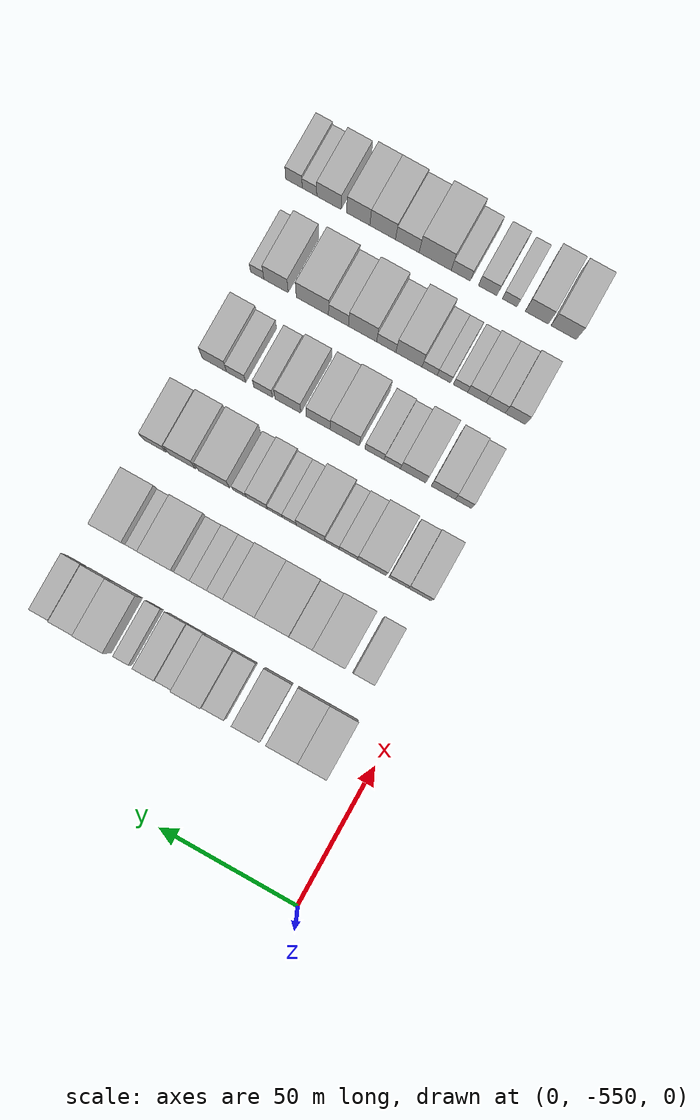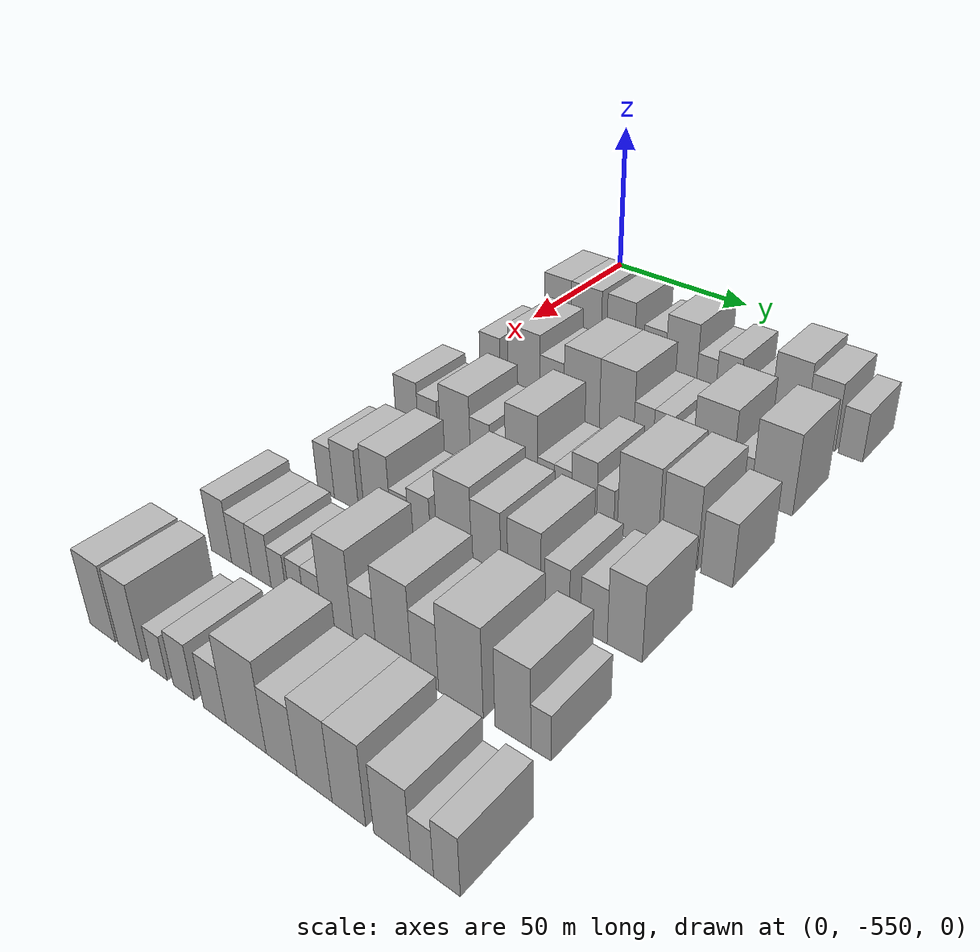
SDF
<sdf version="1.6">
 <world name="default">
  <model name="building_1">
   <static>1</static>
   <pose>50.0000 -532.9642 0 0.000000 0.000000 0.000000</pose>
   <link name="link">
    <pose>0 0 12.00 0 0 0</pose>
    <collision name="collision"><geometry><box><size>20.0000 10.0716 24.0000</size></box></geometry></collision>
    <visual name="visual">
     <cast_shadows>0</cast_shadows>
     <geometry><box><size>20.0000 10.0716 24.0000</size></box></geometry>
     <material>
      <script>
       <uri>model://HANNAS_wall/materials/scripts</uri>
       <uri>model://HANNAS_wall/materials/textures</uri>
       <name>vrc/HANNAS_wall</name>
      </script>
     </material>
    </visual>
   </link>
  </model>
  <model name="building_2">
   <static>1</static>
   <pose>50.0000 -522.3553 0 0.000000 0.000000 0.000000</pose>
   <link name="link">
    <pose>0 0 12.00 0 0 0</pose>
    <collision name="collision"><geometry><box><size>20.0000 11.1462 24.0000</size></box></geometry></collision>
    <visual name="visual">
     <cast_shadows>0</cast_shadows>
     <geometry><box><size>20.0000 11.1462 24.0000</size></box></geometry>
     <material>
      <script>
       <uri>model://HANNAS_wall/materials/scripts</uri>
       <uri>model://HANNAS_wall/materials/textures</uri>
       <name>vrc/HANNAS_wall</name>
      </script>
     </material>
    </visual>
   </link>
  </model>
  <model name="building_3">
   <static>1</static>
   <pose>50.0000 -509.8019 0 0.000000 0.000000 0.000000</pose>
   <link name="link">
    <pose>0 0 12.00 0 0 0</pose>
    <collision name="collision"><geometry><box><size>20.0000 9.9606 24.0000</size></box></geometry></collision>
    <visual name="visual">
     <cast_shadows>0</cast_shadows>
     <geometry><box><size>20.0000 9.9606 24.0000</size></box></geometry>
     <material>
      <script>
       <uri>model://HANNAS_wall/materials/scripts</uri>
       <uri>model://HANNAS_wall/materials/textures</uri>
       <name>vrc/HANNAS_wall</name>
      </script>
     </material>
    </visual>
   </link>
  </model>
  <model name="building_4">
   <static>1</static>
   <pose>50.0000 -497.9303 0 0.000000 0.000000 0.000000</pose>
   <link name="link">
    <pose>0 0 9.00 0 0 0</pose>
    <collision name="collision"><geometry><box><size>20.0000 7.7826 18.0000</size></box></geometry></collision>
    <visual name="visual">
     <cast_shadows>0</cast_shadows>
     <geometry><box><size>20.0000 7.7826 18.0000</size></box></geometry>
     <material>
      <script>
       <uri>model://HANNAS_wall/materials/scripts</uri>
       <uri>model://HANNAS_wall/materials/textures</uri>
       <name>vrc/HANNAS_wall</name>
      </script>
     </material>
    </visual>
   </link>
  </model>
  <model name="building_5">
   <static>1</static>
   <pose>50.0000 -488.7809 0 0.000000 0.000000 0.000000</pose>
   <link name="link">
    <pose>0 0 12.00 0 0 0</pose>
    <collision name="collision"><geometry><box><size>20.0000 10.5162 24.0000</size></box></geometry></collision>
    <visual name="visual">
     <cast_shadows>0</cast_shadows>
     <geometry><box><size>20.0000 10.5162 24.0000</size></box></geometry>
     <material>
      <script>
       <uri>model://HANNAS_wall/materials/scripts</uri>
       <uri>model://HANNAS_wall/materials/textures</uri>
       <name>vrc/HANNAS_wall</name>
      </script>
     </material>
    </visual>
   </link>
  </model>
  <model name="building_6">
   <static>1</static>
   <pose>50.0000 -480.3390 0 0.000000 0.000000 0.000000</pose>
   <link name="link">
    <pose>0 0 7.50 0 0 0</pose>
    <collision name="collision"><geometry><box><size>20.0000 6.3675 15.0000</size></box></geometry></collision>
    <visual name="visual">
     <cast_shadows>0</cast_shadows>
     <geometry><box><size>20.0000 6.3675 15.0000</size></box></geometry>
     <material>
      <script>
       <uri>model://HANNAS_wall/materials/scripts</uri>
       <uri>model://HANNAS_wall/materials/textures</uri>
       <name>vrc/HANNAS_wall</name>
      </script>
     </material>
    </visual>
   </link>
  </model>
  <model name="building_7">
   <static>1</static>
   <pose>50.0000 -473.3430 0 0.000000 0.000000 0.000000</pose>
   <link name="link">
    <pose>0 0 9.00 0 0 0</pose>
    <collision name="collision"><geometry><box><size>20.0000 7.6245 18.0000</size></box></geometry></collision>
    <visual name="visual">
     <cast_shadows>0</cast_shadows>
     <geometry><box><size>20.0000 7.6245 18.0000</size></box></geometry>
     <material>
      <script>
       <uri>model://HANNAS_wall/materials/scripts</uri>
       <uri>model://HANNAS_wall/materials/textures</uri>
       <name>vrc/HANNAS_wall</name>
      </script>
     </material>
    </visual>
   </link>
  </model>
  <model name="building_8">
   <static>1</static>
   <pose>50.0000 -464.7182 0 0.000000 0.000000 0.000000</pose>
   <link name="link">
    <pose>0 0 6.00 0 0 0</pose>
    <collision name="collision"><geometry><box><size>20.0000 5.6252 12.0000</size></box></geometry></collision>
    <visual name="visual">
     <cast_shadows>0</cast_shadows>
     <geometry><box><size>20.0000 5.6252 12.0000</size></box></geometry>
     <material>
      <script>
       <uri>model://HANNAS_wall/materials/scripts</uri>
       <uri>model://HANNAS_wall/materials/textures</uri>
       <name>vrc/HANNAS_wall</name>
      </script>
     </material>
    </visual>
   </link>
  </model>
  <model name="building_9">
   <static>1</static>
   <pose>50.0000 -454.5455 0 0.000000 0.000000 0.000000</pose>
   <link name="link">
    <pose>0 0 12.00 0 0 0</pose>
    <collision name="collision"><geometry><box><size>20.0000 10.7202 24.0000</size></box></geometry></collision>
    <visual name="visual">
     <cast_shadows>0</cast_shadows>
     <geometry><box><size>20.0000 10.7202 24.0000</size></box></geometry>
     <material>
      <script>
       <uri>model://HANNAS_wall/materials/scripts</uri>
       <uri>model://HANNAS_wall/materials/textures</uri>
       <name>vrc/HANNAS_wall</name>
      </script>
     </material>
    </visual>
   </link>
  </model>
  <model name="building_10">
   <static>1</static>
   <pose>50.0000 -444.7229 0 0.000000 0.000000 0.000000</pose>
   <link name="link">
    <pose>0 0 10.50 0 0 0</pose>
    <collision name="collision"><geometry><box><size>20.0000 8.9249 21.0000</size></box></geometry></collision>
    <visual name="visual">
     <cast_shadows>0</cast_shadows>
     <geometry><box><size>20.0000 8.9249 21.0000</size></box></geometry>
     <material>
      <script>
       <uri>model://HANNAS_wall/materials/scripts</uri>
       <uri>model://HANNAS_wall/materials/textures</uri>
       <name>vrc/HANNAS_wall</name>
      </script>
     </material>
    </visual>
   </link>
  </model>
  <model name="building_11">
   <static>1</static>
   <pose>50.0000 -435.8087 0 0.000000 0.000000 0.000000</pose>
   <link name="link">
    <pose>0 0 7.50 0 0 0</pose>
    <collision name="collision"><geometry><box><size>20.0000 6.9034 15.0000</size></box></geometry></collision>
    <visual name="visual">
     <cast_shadows>0</cast_shadows>
     <geometry><box><size>20.0000 6.9034 15.0000</size></box></geometry>
     <material>
      <script>
       <uri>model://HANNAS_wall/materials/scripts</uri>
       <uri>model://HANNAS_wall/materials/textures</uri>
       <name>vrc/HANNAS_wall</name>
      </script>
     </material>
    </visual>
   </link>
  </model>
  <model name="building_124">
   <static>1</static>
   <pose>82.0000 -533.2308 0 0.000000 0.000000 0.000000</pose>
   <link name="link">
    <pose>0 0 9.00 0 0 0</pose>
    <collision name="collision"><geometry><box><size>20.0000 7.5384 18.0000</size></box></geometry></collision>
    <visual name="visual">
     <cast_shadows>0</cast_shadows>
     <geometry><box><size>20.0000 7.5384 18.0000</size></box></geometry>
     <material>
      <script>
       <uri>model://HANNAS_wall/materials/scripts</uri>
       <uri>model://HANNAS_wall/materials/textures</uri>
       <name>vrc/HANNAS_wall</name>
      </script>
     </material>
    </visual>
   </link>
  </model>
  <model name="building_125">
   <static>1</static>
   <pose>82.0000 -520.7141 0 0.000000 0.000000 0.000000</pose>
   <link name="link">
    <pose>0 0 12.00 0 0 0</pose>
    <collision name="collision"><geometry><box><size>20.0000 11.4949 24.0000</size></box></geometry></collision>
    <visual name="visual">
     <cast_shadows>0</cast_shadows>
     <geometry><box><size>20.0000 11.4949 24.0000</size></box></geometry>
     <material>
      <script>
       <uri>model://HANNAS_wall/materials/scripts</uri>
       <uri>model://HANNAS_wall/materials/textures</uri>
       <name>vrc/HANNAS_wall</name>
      </script>
     </material>
    </visual>
   </link>
  </model>
  <model name="building_126">
   <static>1</static>
   <pose>82.0000 -510.8341 0 0.000000 0.000000 0.000000</pose>
   <link name="link">
    <pose>0 0 9.00 0 0 0</pose>
    <collision name="collision"><geometry><box><size>20.0000 8.2651 18.0000</size></box></geometry></collision>
    <visual name="visual">
     <cast_shadows>0</cast_shadows>
     <geometry><box><size>20.0000 8.2651 18.0000</size></box></geometry>
     <material>
      <script>
       <uri>model://HANNAS_wall/materials/scripts</uri>
       <uri>model://HANNAS_wall/materials/textures</uri>
       <name>vrc/HANNAS_wall</name>
      </script>
     </material>
    </visual>
   </link>
  </model>
  <model name="building_127">
   <static>1</static>
   <pose>82.0000 -500.7084 0 0.000000 0.000000 0.000000</pose>
   <link name="link">
    <pose>0 0 12.00 0 0 0</pose>
    <collision name="collision"><geometry><box><size>20.0000 11.9864 24.0000</size></box></geometry></collision>
    <visual name="visual">
     <cast_shadows>0</cast_shadows>
     <geometry><box><size>20.0000 11.9864 24.0000</size></box></geometry>
     <material>
      <script>
       <uri>model://HANNAS_wall/materials/scripts</uri>
       <uri>model://HANNAS_wall/materials/textures</uri>
       <name>vrc/HANNAS_wall</name>
      </script>
     </material>
    </visual>
   </link>
  </model>
  <model name="building_128">
   <static>1</static>
   <pose>82.0000 -489.1323 0 0.000000 0.000000 0.000000</pose>
   <link name="link">
    <pose>0 0 12.00 0 0 0</pose>
    <collision name="collision"><geometry><box><size>20.0000 11.1657 24.0000</size></box></geometry></collision>
    <visual name="visual">
     <cast_shadows>0</cast_shadows>
     <geometry><box><size>20.0000 11.1657 24.0000</size></box></geometry>
     <material>
      <script>
       <uri>model://HANNAS_wall/materials/scripts</uri>
       <uri>model://HANNAS_wall/materials/textures</uri>
       <name>vrc/HANNAS_wall</name>
      </script>
     </material>
    </visual>
   </link>
  </model>
  <model name="building_129">
   <static>1</static>
   <pose>82.0000 -480.4658 0 0.000000 0.000000 0.000000</pose>
   <link name="link">
    <pose>0 0 7.50 0 0 0</pose>
    <collision name="collision"><geometry><box><size>20.0000 6.1675 15.0000</size></box></geometry></collision>
    <visual name="visual">
     <cast_shadows>0</cast_shadows>
     <geometry><box><size>20.0000 6.1675 15.0000</size></box></geometry>
     <material>
      <script>
       <uri>model://HANNAS_wall/materials/scripts</uri>
       <uri>model://HANNAS_wall/materials/textures</uri>
       <name>vrc/HANNAS_wall</name>
      </script>
     </material>
    </visual>
   </link>
  </model>
  <model name="building_130">
   <static>1</static>
   <pose>82.0000 -474.3320 0 0.000000 0.000000 0.000000</pose>
   <link name="link">
    <pose>0 0 7.50 0 0 0</pose>
    <collision name="collision"><geometry><box><size>20.0000 6.1001 15.0000</size></box></geometry></collision>
    <visual name="visual">
     <cast_shadows>0</cast_shadows>
     <geometry><box><size>20.0000 6.1001 15.0000</size></box></geometry>
     <material>
      <script>
       <uri>model://HANNAS_wall/materials/scripts</uri>
       <uri>model://HANNAS_wall/materials/textures</uri>
       <name>vrc/HANNAS_wall</name>
      </script>
     </material>
    </visual>
   </link>
  </model>
  <model name="building_131">
   <static>1</static>
   <pose>82.0000 -468.3574 0 0.000000 0.000000 0.000000</pose>
   <link name="link">
    <pose>0 0 6.00 0 0 0</pose>
    <collision name="collision"><geometry><box><size>20.0000 5.8491 12.0000</size></box></geometry></collision>
    <visual name="visual">
     <cast_shadows>0</cast_shadows>
     <geometry><box><size>20.0000 5.8491 12.0000</size></box></geometry>
     <material>
      <script>
       <uri>model://HANNAS_wall/materials/scripts</uri>
       <uri>model://HANNAS_wall/materials/textures</uri>
       <name>vrc/HANNAS_wall</name>
      </script>
     </material>
    </visual>
   </link>
  </model>
  <model name="building_132">
   <static>1</static>
   <pose>82.0000 -459.5084 0 0.000000 0.000000 0.000000</pose>
   <link name="link">
    <pose>0 0 12.00 0 0 0</pose>
    <collision name="collision"><geometry><box><size>20.0000 11.8490 24.0000</size></box></geometry></collision>
    <visual name="visual">
     <cast_shadows>0</cast_shadows>
     <geometry><box><size>20.0000 11.8490 24.0000</size></box></geometry>
     <material>
      <script>
       <uri>model://HANNAS_wall/materials/scripts</uri>
       <uri>model://HANNAS_wall/materials/textures</uri>
       <name>vrc/HANNAS_wall</name>
      </script>
     </material>
    </visual>
   </link>
  </model>
  <model name="building_133">
   <static>1</static>
   <pose>82.0000 -450.8107 0 0.000000 0.000000 0.000000</pose>
   <link name="link">
    <pose>0 0 6.00 0 0 0</pose>
    <collision name="collision"><geometry><box><size>20.0000 5.5463 12.0000</size></box></geometry></collision>
    <visual name="visual">
     <cast_shadows>0</cast_shadows>
     <geometry><box><size>20.0000 5.5463 12.0000</size></box></geometry>
     <material>
      <script>
       <uri>model://HANNAS_wall/materials/scripts</uri>
       <uri>model://HANNAS_wall/materials/textures</uri>
       <name>vrc/HANNAS_wall</name>
      </script>
     </material>
    </visual>
   </link>
  </model>
  <model name="building_134">
   <static>1</static>
   <pose>82.0000 -442.2227 0 0.000000 0.000000 0.000000</pose>
   <link name="link">
    <pose>0 0 12.00 0 0 0</pose>
    <collision name="collision"><geometry><box><size>20.0000 11.6296 24.0000</size></box></geometry></collision>
    <visual name="visual">
     <cast_shadows>0</cast_shadows>
     <geometry><box><size>20.0000 11.6296 24.0000</size></box></geometry>
     <material>
      <script>
       <uri>model://HANNAS_wall/materials/scripts</uri>
       <uri>model://HANNAS_wall/materials/textures</uri>
       <name>vrc/HANNAS_wall</name>
      </script>
     </material>
    </visual>
   </link>
  </model>
  <model name="building_244">
   <static>1</static>
   <pose>114.0000 -535.8837 0 0.000000 0.000000 0.000000</pose>
   <link name="link">
    <pose>0 0 9.00 0 0 0</pose>
    <collision name="collision"><geometry><box><size>20.0000 8.2325 18.0000</size></box></geometry></collision>
    <visual name="visual">
     <cast_shadows>0</cast_shadows>
     <geometry><box><size>20.0000 8.2325 18.0000</size></box></geometry>
     <material>
      <script>
       <uri>model://HANNAS_wall/materials/scripts</uri>
       <uri>model://HANNAS_wall/materials/textures</uri>
       <name>vrc/HANNAS_wall</name>
      </script>
     </material>
    </visual>
   </link>
  </model>
  <model name="building_245">
   <static>1</static>
   <pose>114.0000 -528.2429 0 0.000000 0.000000 0.000000</pose>
   <link name="link">
    <pose>0 0 7.50 0 0 0</pose>
    <collision name="collision"><geometry><box><size>20.0000 7.0492 15.0000</size></box></geometry></collision>
    <visual name="visual">
     <cast_shadows>0</cast_shadows>
     <geometry><box><size>20.0000 7.0492 15.0000</size></box></geometry>
     <material>
      <script>
       <uri>model://HANNAS_wall/materials/scripts</uri>
       <uri>model://HANNAS_wall/materials/textures</uri>
       <name>vrc/HANNAS_wall</name>
      </script>
     </material>
    </visual>
   </link>
  </model>
  <model name="building_246">
   <static>1</static>
   <pose>114.0000 -518.5119 0 0.000000 0.000000 0.000000</pose>
   <link name="link">
    <pose>0 0 10.50 0 0 0</pose>
    <collision name="collision"><geometry><box><size>20.0000 10.4127 21.0000</size></box></geometry></collision>
    <visual name="visual">
     <cast_shadows>0</cast_shadows>
     <geometry><box><size>20.0000 10.4127 21.0000</size></box></geometry>
     <material>
      <script>
       <uri>model://HANNAS_wall/materials/scripts</uri>
       <uri>model://HANNAS_wall/materials/textures</uri>
       <name>vrc/HANNAS_wall</name>
      </script>
     </material>
    </visual>
   </link>
  </model>
  <model name="building_247">
   <static>1</static>
   <pose>114.0000 -509.9622 0 0.000000 0.000000 0.000000</pose>
   <link name="link">
    <pose>0 0 7.50 0 0 0</pose>
    <collision name="collision"><geometry><box><size>20.0000 6.6868 15.0000</size></box></geometry></collision>
    <visual name="visual">
     <cast_shadows>0</cast_shadows>
     <geometry><box><size>20.0000 6.6868 15.0000</size></box></geometry>
     <material>
      <script>
       <uri>model://HANNAS_wall/materials/scripts</uri>
       <uri>model://HANNAS_wall/materials/textures</uri>
       <name>vrc/HANNAS_wall</name>
      </script>
     </material>
    </visual>
   </link>
  </model>
  <model name="building_248">
   <static>1</static>
   <pose>114.0000 -504.0144 0 0.000000 0.000000 0.000000</pose>
   <link name="link">
    <pose>0 0 6.00 0 0 0</pose>
    <collision name="collision"><geometry><box><size>20.0000 5.2089 12.0000</size></box></geometry></collision>
    <visual name="visual">
     <cast_shadows>0</cast_shadows>
     <geometry><box><size>20.0000 5.2089 12.0000</size></box></geometry>
     <material>
      <script>
       <uri>model://HANNAS_wall/materials/scripts</uri>
       <uri>model://HANNAS_wall/materials/textures</uri>
       <name>vrc/HANNAS_wall</name>
      </script>
     </material>
    </visual>
   </link>
  </model>
  <model name="building_249">
   <static>1</static>
   <pose>114.0000 -496.2249 0 0.000000 0.000000 0.000000</pose>
   <link name="link">
    <pose>0 0 12.00 0 0 0</pose>
    <collision name="collision"><geometry><box><size>20.0000 10.3700 24.0000</size></box></geometry></collision>
    <visual name="visual">
     <cast_shadows>0</cast_shadows>
     <geometry><box><size>20.0000 10.3700 24.0000</size></box></geometry>
     <material>
      <script>
       <uri>model://HANNAS_wall/materials/scripts</uri>
       <uri>model://HANNAS_wall/materials/textures</uri>
       <name>vrc/HANNAS_wall</name>
      </script>
     </material>
    </visual>
   </link>
  </model>
  <model name="building_250">
   <static>1</static>
   <pose>114.0000 -488.4803 0 0.000000 0.000000 0.000000</pose>
   <link name="link">
    <pose>0 0 6.00 0 0 0</pose>
    <collision name="collision"><geometry><box><size>20.0000 5.1191 12.0000</size></box></geometry></collision>
    <visual name="visual">
     <cast_shadows>0</cast_shadows>
     <geometry><box><size>20.0000 5.1191 12.0000</size></box></geometry>
     <material>
      <script>
       <uri>model://HANNAS_wall/materials/scripts</uri>
       <uri>model://HANNAS_wall/materials/textures</uri>
       <name>vrc/HANNAS_wall</name>
      </script>
     </material>
    </visual>
   </link>
  </model>
  <model name="building_251">
   <static>1</static>
   <pose>114.0000 -483.2197 0 0.000000 0.000000 0.000000</pose>
   <link name="link">
    <pose>0 0 6.00 0 0 0</pose>
    <collision name="collision"><geometry><box><size>20.0000 5.4021 12.0000</size></box></geometry></collision>
    <visual name="visual">
     <cast_shadows>0</cast_shadows>
     <geometry><box><size>20.0000 5.4021 12.0000</size></box></geometry>
     <material>
      <script>
       <uri>model://HANNAS_wall/materials/scripts</uri>
       <uri>model://HANNAS_wall/materials/textures</uri>
       <name>vrc/HANNAS_wall</name>
      </script>
     </material>
    </visual>
   </link>
  </model>
  <model name="building_252">
   <static>1</static>
   <pose>114.0000 -476.7211 0 0.000000 0.000000 0.000000</pose>
   <link name="link">
    <pose>0 0 9.00 0 0 0</pose>
    <collision name="collision"><geometry><box><size>20.0000 7.5950 18.0000</size></box></geometry></collision>
    <visual name="visual">
     <cast_shadows>0</cast_shadows>
     <geometry><box><size>20.0000 7.5950 18.0000</size></box></geometry>
     <material>
      <script>
       <uri>model://HANNAS_wall/materials/scripts</uri>
       <uri>model://HANNAS_wall/materials/textures</uri>
       <name>vrc/HANNAS_wall</name>
      </script>
     </material>
    </visual>
   </link>
  </model>
  <model name="building_253">
   <static>1</static>
   <pose>114.0000 -470.3696 0 0.000000 0.000000 0.000000</pose>
   <link name="link">
    <pose>0 0 6.00 0 0 0</pose>
    <collision name="collision"><geometry><box><size>20.0000 5.1081 12.0000</size></box></geometry></collision>
    <visual name="visual">
     <cast_shadows>0</cast_shadows>
     <geometry><box><size>20.0000 5.1081 12.0000</size></box></geometry>
     <material>
      <script>
       <uri>model://HANNAS_wall/materials/scripts</uri>
       <uri>model://HANNAS_wall/materials/textures</uri>
       <name>vrc/HANNAS_wall</name>
      </script>
     </material>
    </visual>
   </link>
  </model>
  <model name="building_254">
   <static>1</static>
   <pose>114.0000 -461.0405 0 0.000000 0.000000 0.000000</pose>
   <link name="link">
    <pose>0 0 12.00 0 0 0</pose>
    <collision name="collision"><geometry><box><size>20.0000 11.5499 24.0000</size></box></geometry></collision>
    <visual name="visual">
     <cast_shadows>0</cast_shadows>
     <geometry><box><size>20.0000 11.5499 24.0000</size></box></geometry>
     <material>
      <script>
       <uri>model://HANNAS_wall/materials/scripts</uri>
       <uri>model://HANNAS_wall/materials/textures</uri>
       <name>vrc/HANNAS_wall</name>
      </script>
     </material>
    </visual>
   </link>
  </model>
  <model name="building_255">
   <static>1</static>
   <pose>114.0000 -449.3753 0 0.000000 0.000000 0.000000</pose>
   <link name="link">
    <pose>0 0 12.00 0 0 0</pose>
    <collision name="collision"><geometry><box><size>20.0000 9.7806 24.0000</size></box></geometry></collision>
    <visual name="visual">
     <cast_shadows>0</cast_shadows>
     <geometry><box><size>20.0000 9.7806 24.0000</size></box></geometry>
     <material>
      <script>
       <uri>model://HANNAS_wall/materials/scripts</uri>
       <uri>model://HANNAS_wall/materials/textures</uri>
       <name>vrc/HANNAS_wall</name>
      </script>
     </material>
    </visual>
   </link>
  </model>
  <model name="building_256">
   <static>1</static>
   <pose>114.0000 -439.3042 0 0.000000 0.000000 0.000000</pose>
   <link name="link">
    <pose>0 0 9.00 0 0 0</pose>
    <collision name="collision"><geometry><box><size>20.0000 8.3617 18.0000</size></box></geometry></collision>
    <visual name="visual">
     <cast_shadows>0</cast_shadows>
     <geometry><box><size>20.0000 8.3617 18.0000</size></box></geometry>
     <material>
      <script>
       <uri>model://HANNAS_wall/materials/scripts</uri>
       <uri>model://HANNAS_wall/materials/textures</uri>
       <name>vrc/HANNAS_wall</name>
      </script>
     </material>
    </visual>
   </link>
  </model>
  <model name="building_363">
   <static>1</static>
   <pose>146.0000 -533.9772 0 0.000000 0.000000 0.000000</pose>
   <link name="link">
    <pose>0 0 7.50 0 0 0</pose>
    <collision name="collision"><geometry><box><size>20.0000 6.0457 15.0000</size></box></geometry></collision>
    <visual name="visual">
     <cast_shadows>0</cast_shadows>
     <geometry><box><size>20.0000 6.0457 15.0000</size></box></geometry>
     <material>
      <script>
       <uri>model://HANNAS_wall/materials/scripts</uri>
       <uri>model://HANNAS_wall/materials/textures</uri>
       <name>vrc/HANNAS_wall</name>
      </script>
     </material>
    </visual>
   </link>
  </model>
  <model name="building_364">
   <static>1</static>
   <pose>146.0000 -526.6402 0 0.000000 0.000000 0.000000</pose>
   <link name="link">
    <pose>0 0 9.00 0 0 0</pose>
    <collision name="collision"><geometry><box><size>20.0000 8.6281 18.0000</size></box></geometry></collision>
    <visual name="visual">
     <cast_shadows>0</cast_shadows>
     <geometry><box><size>20.0000 8.6281 18.0000</size></box></geometry>
     <material>
      <script>
       <uri>model://HANNAS_wall/materials/scripts</uri>
       <uri>model://HANNAS_wall/materials/textures</uri>
       <name>vrc/HANNAS_wall</name>
      </script>
     </material>
    </visual>
   </link>
  </model>
  <model name="building_365">
   <static>1</static>
   <pose>146.0000 -515.7292 0 0.000000 0.000000 0.000000</pose>
   <link name="link">
    <pose>0 0 10.50 0 0 0</pose>
    <collision name="collision"><geometry><box><size>20.0000 9.1940 21.0000</size></box></geometry></collision>
    <visual name="visual">
     <cast_shadows>0</cast_shadows>
     <geometry><box><size>20.0000 9.1940 21.0000</size></box></geometry>
     <material>
      <script>
       <uri>model://HANNAS_wall/materials/scripts</uri>
       <uri>model://HANNAS_wall/materials/textures</uri>
       <name>vrc/HANNAS_wall</name>
      </script>
     </material>
    </visual>
   </link>
  </model>
  <model name="building_366">
   <static>1</static>
   <pose>146.0000 -508.1521 0 0.000000 0.000000 0.000000</pose>
   <link name="link">
    <pose>0 0 6.00 0 0 0</pose>
    <collision name="collision"><geometry><box><size>20.0000 5.9602 12.0000</size></box></geometry></collision>
    <visual name="visual">
     <cast_shadows>0</cast_shadows>
     <geometry><box><size>20.0000 5.9602 12.0000</size></box></geometry>
     <material>
      <script>
       <uri>model://HANNAS_wall/materials/scripts</uri>
       <uri>model://HANNAS_wall/materials/textures</uri>
       <name>vrc/HANNAS_wall</name>
      </script>
     </material>
    </visual>
   </link>
  </model>
  <model name="building_367">
   <static>1</static>
   <pose>146.0000 -501.6224 0 0.000000 0.000000 0.000000</pose>
   <link name="link">
    <pose>0 0 7.50 0 0 0</pose>
    <collision name="collision"><geometry><box><size>20.0000 7.0992 15.0000</size></box></geometry></collision>
    <visual name="visual">
     <cast_shadows>0</cast_shadows>
     <geometry><box><size>20.0000 7.0992 15.0000</size></box></geometry>
     <material>
      <script>
       <uri>model://HANNAS_wall/materials/scripts</uri>
       <uri>model://HANNAS_wall/materials/textures</uri>
       <name>vrc/HANNAS_wall</name>
      </script>
     </material>
    </visual>
   </link>
  </model>
  <model name="building_368">
   <static>1</static>
   <pose>146.0000 -490.7066 0 0.000000 0.000000 0.000000</pose>
   <link name="link">
    <pose>0 0 12.00 0 0 0</pose>
    <collision name="collision"><geometry><box><size>20.0000 10.7323 24.0000</size></box></geometry></collision>
    <visual name="visual">
     <cast_shadows>0</cast_shadows>
     <geometry><box><size>20.0000 10.7323 24.0000</size></box></geometry>
     <material>
      <script>
       <uri>model://HANNAS_wall/materials/scripts</uri>
       <uri>model://HANNAS_wall/materials/textures</uri>
       <name>vrc/HANNAS_wall</name>
      </script>
     </material>
    </visual>
   </link>
  </model>
  <model name="building_369">
   <static>1</static>
   <pose>146.0000 -480.9946 0 0.000000 0.000000 0.000000</pose>
   <link name="link">
    <pose>0 0 10.50 0 0 0</pose>
    <collision name="collision"><geometry><box><size>20.0000 8.6919 21.0000</size></box></geometry></collision>
    <visual name="visual">
     <cast_shadows>0</cast_shadows>
     <geometry><box><size>20.0000 8.6919 21.0000</size></box></geometry>
     <material>
      <script>
       <uri>model://HANNAS_wall/materials/scripts</uri>
       <uri>model://HANNAS_wall/materials/textures</uri>
       <name>vrc/HANNAS_wall</name>
      </script>
     </material>
    </visual>
   </link>
  </model>
  <model name="building_370">
   <static>1</static>
   <pose>146.0000 -469.9564 0 0.000000 0.000000 0.000000</pose>
   <link name="link">
    <pose>0 0 10.50 0 0 0</pose>
    <collision name="collision"><geometry><box><size>20.0000 9.3844 21.0000</size></box></geometry></collision>
    <visual name="visual">
     <cast_shadows>0</cast_shadows>
     <geometry><box><size>20.0000 9.3844 21.0000</size></box></geometry>
     <material>
      <script>
       <uri>model://HANNAS_wall/materials/scripts</uri>
       <uri>model://HANNAS_wall/materials/textures</uri>
       <name>vrc/HANNAS_wall</name>
      </script>
     </material>
    </visual>
   </link>
  </model>
  <model name="building_371">
   <static>1</static>
   <pose>146.0000 -460.8632 0 0.000000 0.000000 0.000000</pose>
   <link name="link">
    <pose>0 0 7.50 0 0 0</pose>
    <collision name="collision"><geometry><box><size>20.0000 6.8019 15.0000</size></box></geometry></collision>
    <visual name="visual">
     <cast_shadows>0</cast_shadows>
     <geometry><box><size>20.0000 6.8019 15.0000</size></box></geometry>
     <material>
      <script>
       <uri>model://HANNAS_wall/materials/scripts</uri>
       <uri>model://HANNAS_wall/materials/textures</uri>
       <name>vrc/HANNAS_wall</name>
      </script>
     </material>
    </visual>
   </link>
  </model>
  <model name="building_372">
   <static>1</static>
   <pose>146.0000 -450.9510 0 0.000000 0.000000 0.000000</pose>
   <link name="link">
    <pose>0 0 7.50 0 0 0</pose>
    <collision name="collision"><geometry><box><size>20.0000 7.0226 15.0000</size></box></geometry></collision>
    <visual name="visual">
     <cast_shadows>0</cast_shadows>
     <geometry><box><size>20.0000 7.0226 15.0000</size></box></geometry>
     <material>
      <script>
       <uri>model://HANNAS_wall/materials/scripts</uri>
       <uri>model://HANNAS_wall/materials/textures</uri>
       <name>vrc/HANNAS_wall</name>
      </script>
     </material>
    </visual>
   </link>
  </model>
  <model name="building_373">
   <static>1</static>
   <pose>146.0000 -442.9779 0 0.000000 0.000000 0.000000</pose>
   <link name="link">
    <pose>0 0 10.50 0 0 0</pose>
    <collision name="collision"><geometry><box><size>20.0000 8.9235 21.0000</size></box></geometry></collision>
    <visual name="visual">
     <cast_shadows>0</cast_shadows>
     <geometry><box><size>20.0000 8.9235 21.0000</size></box></geometry>
     <material>
      <script>
       <uri>model://HANNAS_wall/materials/scripts</uri>
       <uri>model://HANNAS_wall/materials/textures</uri>
       <name>vrc/HANNAS_wall</name>
      </script>
     </material>
    </visual>
   </link>
  </model>
  <model name="building_481">
   <static>1</static>
   <pose>178.0000 -535.2953 0 0.000000 0.000000 0.000000</pose>
   <link name="link">
    <pose>0 0 9.00 0 0 0</pose>
    <collision name="collision"><geometry><box><size>20.0000 7.4094 18.0000</size></box></geometry></collision>
    <visual name="visual">
     <cast_shadows>0</cast_shadows>
     <geometry><box><size>20.0000 7.4094 18.0000</size></box></geometry>
     <material>
      <script>
       <uri>model://HANNAS_wall/materials/scripts</uri>
       <uri>model://HANNAS_wall/materials/textures</uri>
       <name>vrc/HANNAS_wall</name>
      </script>
     </material>
    </visual>
   </link>
  </model>
  <model name="building_482">
   <static>1</static>
   <pose>178.0000 -528.0949 0 0.000000 0.000000 0.000000</pose>
   <link name="link">
    <pose>0 0 7.50 0 0 0</pose>
    <collision name="collision"><geometry><box><size>20.0000 6.9915 15.0000</size></box></geometry></collision>
    <visual name="visual">
     <cast_shadows>0</cast_shadows>
     <geometry><box><size>20.0000 6.9915 15.0000</size></box></geometry>
     <material>
      <script>
       <uri>model://HANNAS_wall/materials/scripts</uri>
       <uri>model://HANNAS_wall/materials/textures</uri>
       <name>vrc/HANNAS_wall</name>
      </script>
     </material>
    </visual>
   </link>
  </model>
  <model name="building_483">
   <static>1</static>
   <pose>178.0000 -521.2118 0 0.000000 0.000000 0.000000</pose>
   <link name="link">
    <pose>0 0 7.50 0 0 0</pose>
    <collision name="collision"><geometry><box><size>20.0000 6.7747 15.0000</size></box></geometry></collision>
    <visual name="visual">
     <cast_shadows>0</cast_shadows>
     <geometry><box><size>20.0000 6.7747 15.0000</size></box></geometry>
     <material>
      <script>
       <uri>model://HANNAS_wall/materials/scripts</uri>
       <uri>model://HANNAS_wall/materials/textures</uri>
       <name>vrc/HANNAS_wall</name>
      </script>
     </material>
    </visual>
   </link>
  </model>
  <model name="building_484">
   <static>1</static>
   <pose>178.0000 -515.2256 0 0.000000 0.000000 0.000000</pose>
   <link name="link">
    <pose>0 0 6.00 0 0 0</pose>
    <collision name="collision"><geometry><box><size>20.0000 5.1978 12.0000</size></box></geometry></collision>
    <visual name="visual">
     <cast_shadows>0</cast_shadows>
     <geometry><box><size>20.0000 5.1978 12.0000</size></box></geometry>
     <material>
      <script>
       <uri>model://HANNAS_wall/materials/scripts</uri>
       <uri>model://HANNAS_wall/materials/textures</uri>
       <name>vrc/HANNAS_wall</name>
      </script>
     </material>
    </visual>
   </link>
  </model>
  <model name="building_485">
   <static>1</static>
   <pose>178.0000 -509.1801 0 0.000000 0.000000 0.000000</pose>
   <link name="link">
    <pose>0 0 6.00 0 0 0</pose>
    <collision name="collision"><geometry><box><size>20.0000 4.8932 12.0000</size></box></geometry></collision>
    <visual name="visual">
     <cast_shadows>0</cast_shadows>
     <geometry><box><size>20.0000 4.8932 12.0000</size></box></geometry>
     <material>
      <script>
       <uri>model://HANNAS_wall/materials/scripts</uri>
       <uri>model://HANNAS_wall/materials/textures</uri>
       <name>vrc/HANNAS_wall</name>
      </script>
     </material>
    </visual>
   </link>
  </model>
  <model name="building_486">
   <static>1</static>
   <pose>178.0000 -503.9434 0 0.000000 0.000000 0.000000</pose>
   <link name="link">
    <pose>0 0 6.00 0 0 0</pose>
    <collision name="collision"><geometry><box><size>20.0000 5.5801 12.0000</size></box></geometry></collision>
    <visual name="visual">
     <cast_shadows>0</cast_shadows>
     <geometry><box><size>20.0000 5.5801 12.0000</size></box></geometry>
     <material>
      <script>
       <uri>model://HANNAS_wall/materials/scripts</uri>
       <uri>model://HANNAS_wall/materials/textures</uri>
       <name>vrc/HANNAS_wall</name>
      </script>
     </material>
    </visual>
   </link>
  </model>
  <model name="building_487">
   <static>1</static>
   <pose>178.0000 -496.3434 0 0.000000 0.000000 0.000000</pose>
   <link name="link">
    <pose>0 0 12.00 0 0 0</pose>
    <collision name="collision"><geometry><box><size>20.0000 9.6198 24.0000</size></box></geometry></collision>
    <visual name="visual">
     <cast_shadows>0</cast_shadows>
     <geometry><box><size>20.0000 9.6198 24.0000</size></box></geometry>
     <material>
      <script>
       <uri>model://HANNAS_wall/materials/scripts</uri>
       <uri>model://HANNAS_wall/materials/textures</uri>
       <name>vrc/HANNAS_wall</name>
      </script>
     </material>
    </visual>
   </link>
  </model>
  <model name="building_488">
   <static>1</static>
   <pose>178.0000 -488.0123 0 0.000000 0.000000 0.000000</pose>
   <link name="link">
    <pose>0 0 7.50 0 0 0</pose>
    <collision name="collision"><geometry><box><size>20.0000 7.0424 15.0000</size></box></geometry></collision>
    <visual name="visual">
     <cast_shadows>0</cast_shadows>
     <geometry><box><size>20.0000 7.0424 15.0000</size></box></geometry>
     <material>
      <script>
       <uri>model://HANNAS_wall/materials/scripts</uri>
       <uri>model://HANNAS_wall/materials/textures</uri>
       <name>vrc/HANNAS_wall</name>
      </script>
     </material>
    </visual>
   </link>
  </model>
  <model name="building_489">
   <static>1</static>
   <pose>178.0000 -479.3253 0 0.000000 0.000000 0.000000</pose>
   <link name="link">
    <pose>0 0 12.00 0 0 0</pose>
    <collision name="collision"><geometry><box><size>20.0000 10.3317 24.0000</size></box></geometry></collision>
    <visual name="visual">
     <cast_shadows>0</cast_shadows>
     <geometry><box><size>20.0000 10.3317 24.0000</size></box></geometry>
     <material>
      <script>
       <uri>model://HANNAS_wall/materials/scripts</uri>
       <uri>model://HANNAS_wall/materials/textures</uri>
       <name>vrc/HANNAS_wall</name>
      </script>
     </material>
    </visual>
   </link>
  </model>
  <model name="building_490">
   <static>1</static>
   <pose>178.0000 -470.4868 0 0.000000 0.000000 0.000000</pose>
   <link name="link">
    <pose>0 0 9.00 0 0 0</pose>
    <collision name="collision"><geometry><box><size>20.0000 7.3454 18.0000</size></box></geometry></collision>
    <visual name="visual">
     <cast_shadows>0</cast_shadows>
     <geometry><box><size>20.0000 7.3454 18.0000</size></box></geometry>
     <material>
      <script>
       <uri>model://HANNAS_wall/materials/scripts</uri>
       <uri>model://HANNAS_wall/materials/textures</uri>
       <name>vrc/HANNAS_wall</name>
      </script>
     </material>
    </visual>
   </link>
  </model>
  <model name="building_491">
   <static>1</static>
   <pose>178.0000 -460.8904 0 0.000000 0.000000 0.000000</pose>
   <link name="link">
    <pose>0 0 12.00 0 0 0</pose>
    <collision name="collision"><geometry><box><size>20.0000 11.8474 24.0000</size></box></geometry></collision>
    <visual name="visual">
     <cast_shadows>0</cast_shadows>
     <geometry><box><size>20.0000 11.8474 24.0000</size></box></geometry>
     <material>
      <script>
       <uri>model://HANNAS_wall/materials/scripts</uri>
       <uri>model://HANNAS_wall/materials/textures</uri>
       <name>vrc/HANNAS_wall</name>
      </script>
     </material>
    </visual>
   </link>
  </model>
  <model name="building_492">
   <static>1</static>
   <pose>178.0000 -447.4942 0 0.000000 0.000000 0.000000</pose>
   <link name="link">
    <pose>0 0 10.50 0 0 0</pose>
    <collision name="collision"><geometry><box><size>20.0000 8.9451 21.0000</size></box></geometry></collision>
    <visual name="visual">
     <cast_shadows>0</cast_shadows>
     <geometry><box><size>20.0000 8.9451 21.0000</size></box></geometry>
     <material>
      <script>
       <uri>model://HANNAS_wall/materials/scripts</uri>
       <uri>model://HANNAS_wall/materials/textures</uri>
       <name>vrc/HANNAS_wall</name>
      </script>
     </material>
    </visual>
   </link>
  </model>
  <model name="building_493">
   <static>1</static>
   <pose>178.0000 -440.5621 0 0.000000 0.000000 0.000000</pose>
   <link name="link">
    <pose>0 0 6.00 0 0 0</pose>
    <collision name="collision"><geometry><box><size>20.0000 4.9191 12.0000</size></box></geometry></collision>
    <visual name="visual">
     <cast_shadows>0</cast_shadows>
     <geometry><box><size>20.0000 4.9191 12.0000</size></box></geometry>
     <material>
      <script>
       <uri>model://HANNAS_wall/materials/scripts</uri>
       <uri>model://HANNAS_wall/materials/textures</uri>
       <name>vrc/HANNAS_wall</name>
      </script>
     </material>
    </visual>
   </link>
  </model>
  <model name="building_601">
   <static>1</static>
   <pose>210.0000 -535.3690 0 0.000000 0.000000 0.000000</pose>
   <link name="link">
    <pose>0 0 10.50 0 0 0</pose>
    <collision name="collision"><geometry><box><size>20.0000 9.2619 21.0000</size></box></geometry></collision>
    <visual name="visual">
     <cast_shadows>0</cast_shadows>
     <geometry><box><size>20.0000 9.2619 21.0000</size></box></geometry>
     <material>
      <script>
       <uri>model://HANNAS_wall/materials/scripts</uri>
       <uri>model://HANNAS_wall/materials/textures</uri>
       <name>vrc/HANNAS_wall</name>
      </script>
     </material>
    </visual>
   </link>
  </model>
  <model name="building_602">
   <static>1</static>
   <pose>210.0000 -525.5161 0 0.000000 0.000000 0.000000</pose>
   <link name="link">
    <pose>0 0 10.50 0 0 0</pose>
    <collision name="collision"><geometry><box><size>20.0000 8.4439 21.0000</size></box></geometry></collision>
    <visual name="visual">
     <cast_shadows>0</cast_shadows>
     <geometry><box><size>20.0000 8.4439 21.0000</size></box></geometry>
     <material>
      <script>
       <uri>model://HANNAS_wall/materials/scripts</uri>
       <uri>model://HANNAS_wall/materials/textures</uri>
       <name>vrc/HANNAS_wall</name>
      </script>
     </material>
    </visual>
   </link>
  </model>
  <model name="building_603">
   <static>1</static>
   <pose>210.0000 -515.5773 0 0.000000 0.000000 0.000000</pose>
   <link name="link">
    <pose>0 0 6.00 0 0 0</pose>
    <collision name="collision"><geometry><box><size>20.0000 5.4337 12.0000</size></box></geometry></collision>
    <visual name="visual">
     <cast_shadows>0</cast_shadows>
     <geometry><box><size>20.0000 5.4337 12.0000</size></box></geometry>
     <material>
      <script>
       <uri>model://HANNAS_wall/materials/scripts</uri>
       <uri>model://HANNAS_wall/materials/textures</uri>
       <name>vrc/HANNAS_wall</name>
      </script>
     </material>
    </visual>
   </link>
  </model>
  <model name="building_604">
   <static>1</static>
   <pose>210.0000 -507.4967 0 0.000000 0.000000 0.000000</pose>
   <link name="link">
    <pose>0 0 7.50 0 0 0</pose>
    <collision name="collision"><geometry><box><size>20.0000 6.7273 15.0000</size></box></geometry></collision>
    <visual name="visual">
     <cast_shadows>0</cast_shadows>
     <geometry><box><size>20.0000 6.7273 15.0000</size></box></geometry>
     <material>
      <script>
       <uri>model://HANNAS_wall/materials/scripts</uri>
       <uri>model://HANNAS_wall/materials/textures</uri>
       <name>vrc/HANNAS_wall</name>
      </script>
     </material>
    </visual>
   </link>
  </model>
  <model name="building_605">
   <static>1</static>
   <pose>210.0000 -497.6088 0 0.000000 0.000000 0.000000</pose>
   <link name="link">
    <pose>0 0 7.50 0 0 0</pose>
    <collision name="collision"><geometry><box><size>20.0000 7.0485 15.0000</size></box></geometry></collision>
    <visual name="visual">
     <cast_shadows>0</cast_shadows>
     <geometry><box><size>20.0000 7.0485 15.0000</size></box></geometry>
     <material>
      <script>
       <uri>model://HANNAS_wall/materials/scripts</uri>
       <uri>model://HANNAS_wall/materials/textures</uri>
       <name>vrc/HANNAS_wall</name>
      </script>
     </material>
    </visual>
   </link>
  </model>
  <model name="building_606">
   <static>1</static>
   <pose>210.0000 -488.1912 0 0.000000 0.000000 0.000000</pose>
   <link name="link">
    <pose>0 0 12.00 0 0 0</pose>
    <collision name="collision"><geometry><box><size>20.0000 11.7868 24.0000</size></box></geometry></collision>
    <visual name="visual">
     <cast_shadows>0</cast_shadows>
     <geometry><box><size>20.0000 11.7868 24.0000</size></box></geometry>
     <material>
      <script>
       <uri>model://HANNAS_wall/materials/scripts</uri>
       <uri>model://HANNAS_wall/materials/textures</uri>
       <name>vrc/HANNAS_wall</name>
      </script>
     </material>
    </visual>
   </link>
  </model>
  <model name="building_607">
   <static>1</static>
   <pose>210.0000 -477.9398 0 0.000000 0.000000 0.000000</pose>
   <link name="link">
    <pose>0 0 9.00 0 0 0</pose>
    <collision name="collision"><geometry><box><size>20.0000 8.7161 18.0000</size></box></geometry></collision>
    <visual name="visual">
     <cast_shadows>0</cast_shadows>
     <geometry><box><size>20.0000 8.7161 18.0000</size></box></geometry>
     <material>
      <script>
       <uri>model://HANNAS_wall/materials/scripts</uri>
       <uri>model://HANNAS_wall/materials/textures</uri>
       <name>vrc/HANNAS_wall</name>
      </script>
     </material>
    </visual>
   </link>
  </model>
  <model name="building_608">
   <static>1</static>
   <pose>210.0000 -468.8542 0 0.000000 0.000000 0.000000</pose>
   <link name="link">
    <pose>0 0 10.50 0 0 0</pose>
    <collision name="collision"><geometry><box><size>20.0000 9.4550 21.0000</size></box></geometry></collision>
    <visual name="visual">
     <cast_shadows>0</cast_shadows>
     <geometry><box><size>20.0000 9.4550 21.0000</size></box></geometry>
     <material>
      <script>
       <uri>model://HANNAS_wall/materials/scripts</uri>
       <uri>model://HANNAS_wall/materials/textures</uri>
       <name>vrc/HANNAS_wall</name>
      </script>
     </material>
    </visual>
   </link>
  </model>
  <model name="building_609">
   <static>1</static>
   <pose>210.0000 -459.8063 0 0.000000 0.000000 0.000000</pose>
   <link name="link">
    <pose>0 0 10.50 0 0 0</pose>
    <collision name="collision"><geometry><box><size>20.0000 8.6408 21.0000</size></box></geometry></collision>
    <visual name="visual">
     <cast_shadows>0</cast_shadows>
     <geometry><box><size>20.0000 8.6408 21.0000</size></box></geometry>
     <material>
      <script>
       <uri>model://HANNAS_wall/materials/scripts</uri>
       <uri>model://HANNAS_wall/materials/textures</uri>
       <name>vrc/HANNAS_wall</name>
      </script>
     </material>
    </visual>
   </link>
  </model>
  <model name="building_610">
   <static>1</static>
   <pose>210.0000 -448.9958 0 0.000000 0.000000 0.000000</pose>
   <link name="link">
    <pose>0 0 9.00 0 0 0</pose>
    <collision name="collision"><geometry><box><size>20.0000 8.9801 18.0000</size></box></geometry></collision>
    <visual name="visual">
     <cast_shadows>0</cast_shadows>
     <geometry><box><size>20.0000 8.9801 18.0000</size></box></geometry>
     <material>
      <script>
       <uri>model://HANNAS_wall/materials/scripts</uri>
       <uri>model://HANNAS_wall/materials/textures</uri>
       <name>vrc/HANNAS_wall</name>
      </script>
     </material>
    </visual>
   </link>
  </model>
  <model name="building_611">
   <static>1</static>
   <pose>210.0000 -441.8102 0 0.000000 0.000000 0.000000</pose>
   <link name="link">
    <pose>0 0 6.00 0 0 0</pose>
    <collision name="collision"><geometry><box><size>20.0000 5.3912 12.0000</size></box></geometry></collision>
    <visual name="visual">
     <cast_shadows>0</cast_shadows>
     <geometry><box><size>20.0000 5.3912 12.0000</size></box></geometry>
     <material>
      <script>
       <uri>model://HANNAS_wall/materials/scripts</uri>
       <uri>model://HANNAS_wall/materials/textures</uri>
       <name>vrc/HANNAS_wall</name>
      </script>
     </material>
    </visual>
   </link>
  </model>
  <model name="building_612">
   <static>1</static>
   <pose>210.0000 -436.0695 0 0.000000 0.000000 0.000000</pose>
   <link name="link">
    <pose>0 0 7.50 0 0 0</pose>
    <collision name="collision"><geometry><box><size>20.0000 6.0901 15.0000</size></box></geometry></collision>
    <visual name="visual">
     <cast_shadows>0</cast_shadows>
     <geometry><box><size>20.0000 6.0901 15.0000</size></box></geometry>
     <material>
      <script>
       <uri>model://HANNAS_wall/materials/scripts</uri>
       <uri>model://HANNAS_wall/materials/textures</uri>
       <name>vrc/HANNAS_wall</name>
      </script>
     </material>
    </visual>
   </link>
  </model>
 </world>
</sdf>
